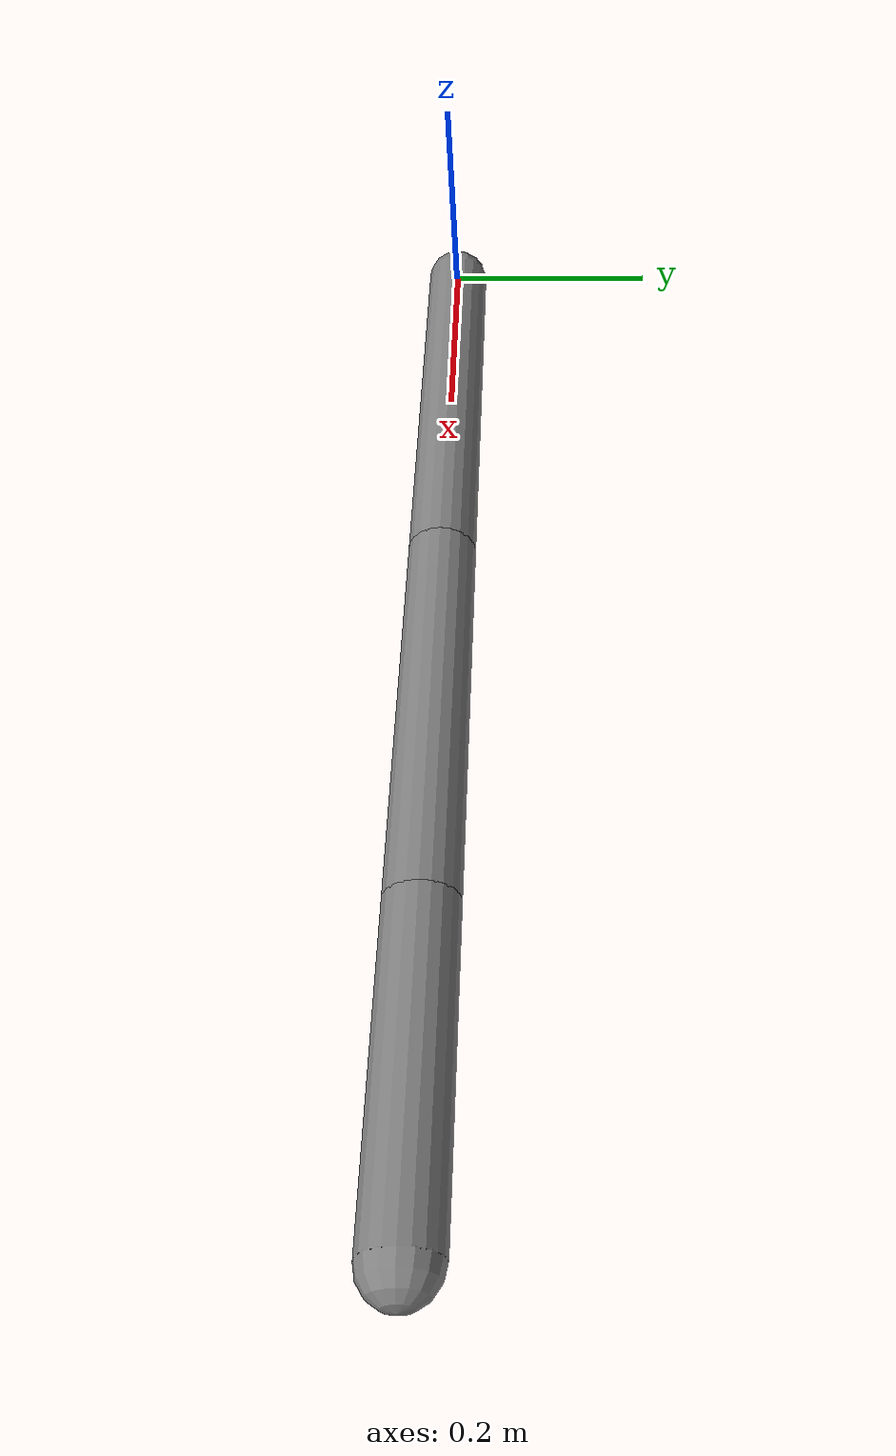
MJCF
<mujoco model="compound-arm-01">
  <compiler angle="radian"/>
  <option timestep="0.002" integrator="RK4" gravity="0 0 0"/>
  <worldbody>
    <body name="link_a">
      <joint name="joint_a" type="hinge" axis="0 0 1" range="-1.2 1.2" limited="true" damping="0.4" armature="0.02" frictionloss="0"/>
      <geom name="link_a_geom" type="capsule" fromto="0 0 0 0.4 0 0" size="0.03" density="500"/>
      <body name="link_b" pos="0.4 0 0">
        <joint name="joint_b" type="hinge" axis="0 0 1" range="-1.2 1.2" limited="true" damping="0.4" armature="0.02" frictionloss="0"/>
        <geom name="link_b_geom" type="capsule" fromto="0 0 0 0.35 0 0" size="0.03" density="500"/>
        <body name="link_c" pos="0.35 0 0">
          <joint name="joint_c" type="hinge" axis="0 1 0" range="-1.2 1.2" limited="true" damping="0.01" armature="0.02" frictionloss="0"/>
          <geom name="link_c_geom" type="capsule" fromto="0 0 0 0.25 0 0" size="0.03" density="500"/>
          <body name="end_effector" pos="0.25 0 0">
            <geom name="end_effector_geom" type="sphere" size="0.02" mass="0.01"/>
          </body>
        </body>
      </body>
    </body>
  </worldbody>
  <actuator>
    <position name="motor_a" joint="joint_a" kp="20" ctrllimited="true" ctrlrange="-1.2 1.2"/>
    <position name="motor_b" joint="joint_b" kp="20" ctrllimited="true" ctrlrange="-1.2 1.2"/>
    <position name="motor_c" joint="joint_c" kp="20" ctrllimited="true" ctrlrange="-1.2 1.2"/>
  </actuator>
</mujoco>
